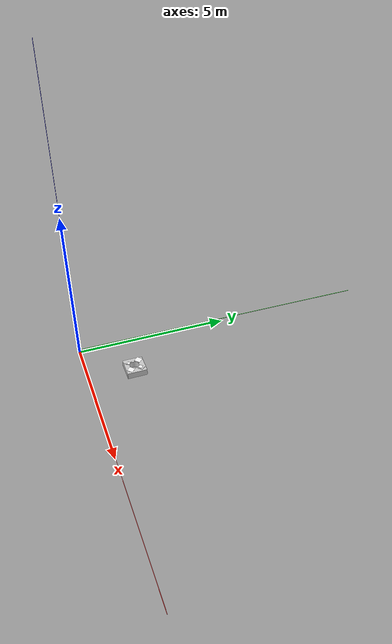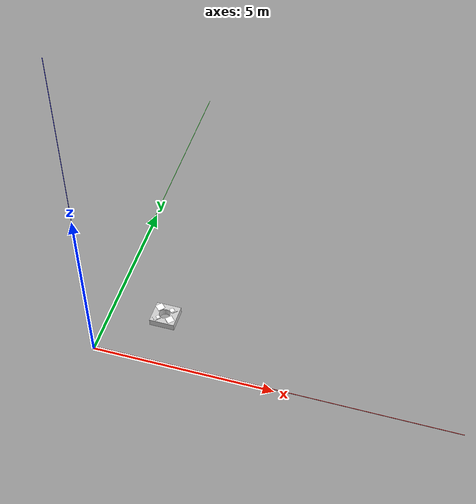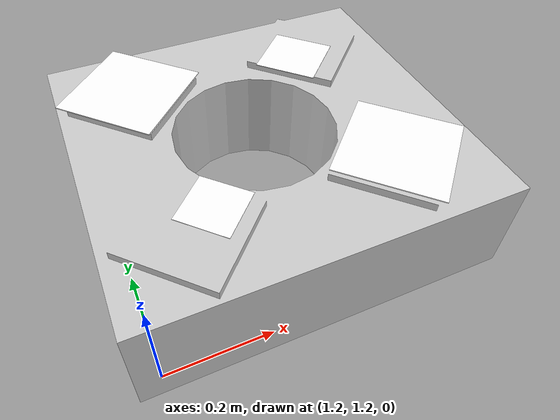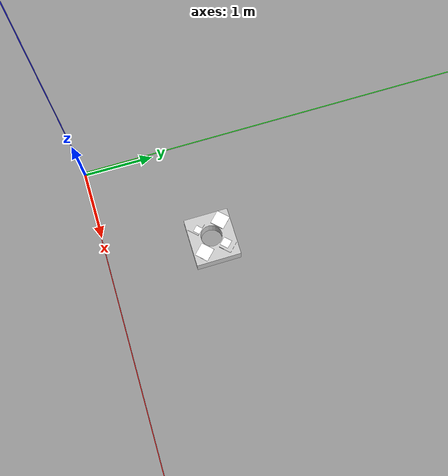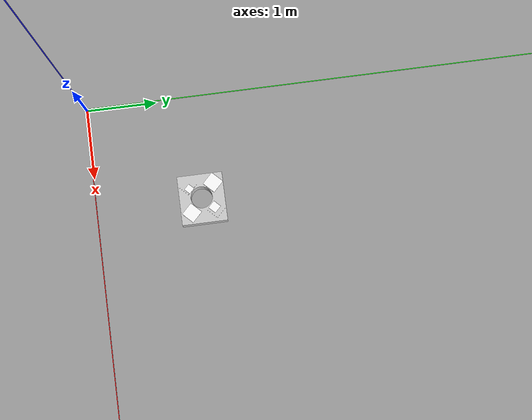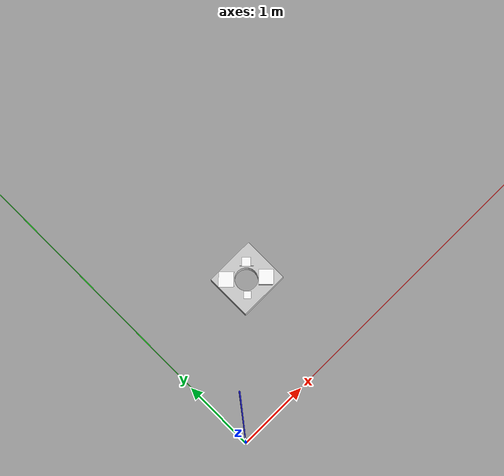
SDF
<sdf version="1.9">
 <world name="iris_runway">
  <physics name="1ms" type="ignore">
   <max_step_size>0.001</max_step_size>
   <real_time_factor>1.0</real_time_factor>
  </physics>
  <plugin filename="gz-sim-physics-system" name="gz::sim::systems::Physics"/>
  <plugin filename="gz-sim-sensors-system" name="gz::sim::systems::Sensors">
   <render_engine>ogre2</render_engine>
  </plugin>
  <plugin filename="gz-sim-user-commands-system" name="gz::sim::systems::UserCommands"/>
  <plugin filename="gz-sim-scene-broadcaster-system" name="gz::sim::systems::SceneBroadcaster"/>
  <plugin filename="gz-sim-imu-system" name="gz::sim::systems::Imu"/>
  <plugin filename="gz-sim-navsat-system" name="gz::sim::systems::NavSat"/>
  <scene><ambient>1.0 1.0 1.0</ambient><background>0.8 0.8 0.8</background></scene>
  <spherical_coordinates>
   <latitude_deg>-35.363262</latitude_deg>
   <longitude_deg>149.165237</longitude_deg>
   <elevation>584</elevation>
   <heading_deg>0</heading_deg>
   <surface_model>EARTH_WGS84</surface_model>
  </spherical_coordinates>
  <light type="directional" name="sun">
   <pose>0 0 10 0 0 0</pose>
   <diffuse>0.8 0.8 0.8 1</diffuse>
   <specular>0.8 0.8 0.8 1</specular>
   <attenuation>
    <range>1000</range>
    <constant>0.9</constant>
    <linear>0.01</linear>
    <quadratic>0.001</quadratic>
   </attenuation>
   <direction>-0.5 0.1 -0.9</direction>
  </light>
  <model name="axes">
   <static>1</static>
   <link name="link">
    <visual name="r">
     <cast_shadows>0</cast_shadows>
     <pose>5 0 0.1 0 0 0</pose>
     <geometry><box><size>10 0.01 0.01</size></box></geometry>
     <material>
      <ambient>1 0 0 0.8</ambient>
      <diffuse>1 0 0 0.8</diffuse>
      <emissive>1 0 0 0.8</emissive>
      <specular>0.5 0.5 0.5 0.8</specular>
     </material>
    </visual>
    <visual name="g">
     <cast_shadows>0</cast_shadows>
     <pose>0 5 0.1 0 0 0</pose>
     <geometry><box><size>0.01 10 0.01</size></box></geometry>
     <material>
      <ambient>0 1 0 0.8</ambient>
      <diffuse>0 1 0 0.8</diffuse>
      <emissive>0 1 0 0.8</emissive>
      <specular>0.5 0.5 0.5 0.8</specular>
     </material>
    </visual>
    <visual name="b">
     <cast_shadows>0</cast_shadows>
     <pose>0 0 5.1 0 0 0</pose>
     <geometry><box><size>0.01 0.01 10</size></box></geometry>
     <material>
      <ambient>0 0 1 0.8</ambient>
      <diffuse>0 0 1 0.8</diffuse>
      <emissive>0 0 1 0.8</emissive>
      <specular>0.5 0.5 0.5 0.8</specular>
     </material>
    </visual>
    <sensor name="navsat_sensor" type="navsat"><always_on>1</always_on><update_rate>1</update_rate></sensor>
   </link>
  </model>
  <model name="apriltaga">
   <include><uri>model://apriltag_a</uri><pose degrees="true">1.30 1.67 0.216 0 0 45</pose></include>
  </model>
  <model name="apriltagc">
   <include><uri>model://apriltag_c</uri><pose degrees="true">1.645 1.65 0.216 0 0 45</pose></include>
  </model>
  <model name="apriltagb">
   <include><uri>model://apriltag_b</uri><pose degrees="true">1.69 1.328 0.216 0 0 45</pose></include>
  </model>
  <model name="apriltagd">
   <include><uri>model://apriltag_d</uri><pose degrees="true">1.35 1.33 0.216 0 0 45</pose></include>
  </model>
  <model name="landing_station">
   <include><uri>model://landing_station</uri><pose degrees="true">1.65 1.70 0 0 0 90</pose></include>
  </model>
 </world>
</sdf>

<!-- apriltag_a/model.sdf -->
<sdf version='1.6'>
  <model name='apriltag_a'>
    <link name='main'>
    <pose frame=''>0 0 0 0 0 0</pose>
      <visual name='main_at'>
        <geometry>
          <mesh>
            <scale>0.2 0.2 0.2</scale>
            <uri>model://apriltag_a/meshes/apriltag.dae</uri>
          </mesh>
        </geometry>
        <material>
          <diffuse>1.0 1.0 1.0</diffuse>
          <specular>1.0 1.0 1.0</specular>
          <pbr>
            <metal>
              <albedo_map>model://apriltag_a/meshes/tag36_11_00000.png</albedo_map>
            </metal>
          </pbr>
        </material>
      </visual>
     </link>
    <static>1</static>
  </model>
</sdf>

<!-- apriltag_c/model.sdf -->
<sdf version='1.6'>
  <model name='apriltag_c'>
    <link name='main'>
    <pose frame=''>0 0 0 0 0 0</pose>
      <visual name='main_at'>
        <geometry>
          <mesh>
            <scale>0.122 0.122 0.122</scale>
            <uri>model://apriltag_c/meshes/apriltag.dae</uri>
          </mesh>
        </geometry>
        <material>
          <diffuse>1.0 1.0 1.0</diffuse>
          <specular>1.0 1.0 1.0</specular>
          <pbr>
            <metal>
              <albedo_map>model://apriltag_c/meshes/tag36_11_00004.png</albedo_map>
            </metal>
          </pbr>
        </material>
      </visual>
     </link>
    <static>1</static>
  </model>
</sdf>

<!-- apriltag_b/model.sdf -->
<sdf version='1.6'>
  <model name='apriltag_b'>
    <link name='main'>
    <pose frame=''>0 0 0 0 0 0</pose>
      <visual name='main_at'>
        <geometry>
          <mesh>
            <scale>0.195 0.195 0.195</scale>
            <uri>model://apriltag_b/meshes/apriltag.dae</uri>
          </mesh>
        </geometry>
        <material>
          <diffuse>1.0 1.0 1.0</diffuse>
          <specular>1.0 1.0 1.0</specular>
          <pbr>
            <metal>
              <albedo_map>model://apriltag_b/meshes/tag36_11_00002.png</albedo_map>
            </metal>
          </pbr>
        </material>
      </visual>
     </link>
    <static>1</static>
  </model>
</sdf>

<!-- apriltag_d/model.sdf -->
<sdf version='1.6'>
  <model name='apriltag_d'>
    <link name='main'>
    <pose frame=''>0 0 0 0 0 0</pose>
      <visual name='main_at'>
        <geometry>
          <mesh>
            <scale>0.098 0.098 0.098</scale>
            <uri>model://apriltag_d/meshes/apriltag.dae</uri>
          </mesh>
        </geometry>
        <material>
          <diffuse>1.0 1.0 1.0</diffuse>
          <specular>1.0 1.0 1.0</specular>
          <pbr>
            <metal>
              <albedo_map>model://apriltag_d/meshes/tag36_11_00001.png</albedo_map>
            </metal>
          </pbr>
        </material>
      </visual>
     </link>
    <static>1</static>
  </model>
</sdf>

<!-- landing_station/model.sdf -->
<sdf version='1.6'>
  <model name='landing_station'>
    <link name='main'>
    <pose frame=''>0 0 0 0 0 0</pose>
      <visual name='main_st'>
        <geometry>
          <mesh>
            <scale>10.0 10.0 10.0</scale>
            <uri>model://landing_station/meshes/landing_station.dae</uri>
          </mesh>
        </geometry>
      </visual>
     </link>
    <static>1</static>
  </model>
</sdf>
